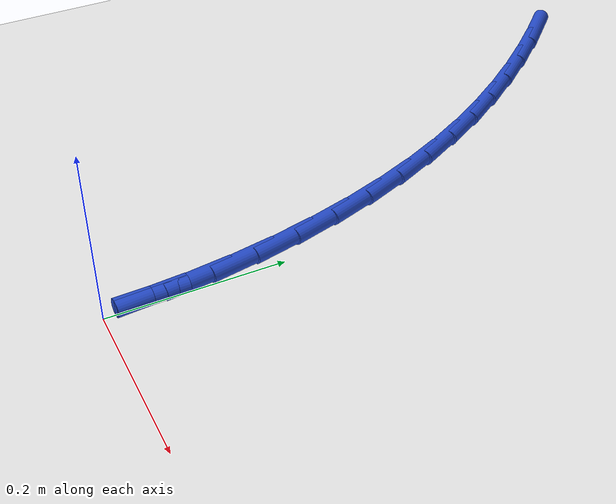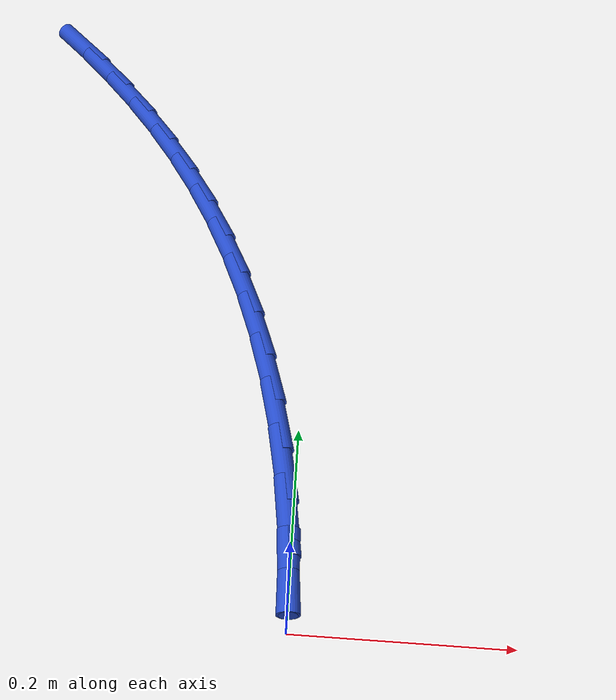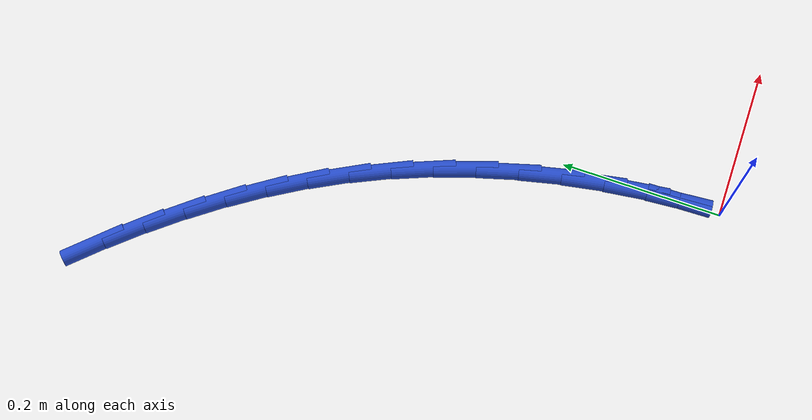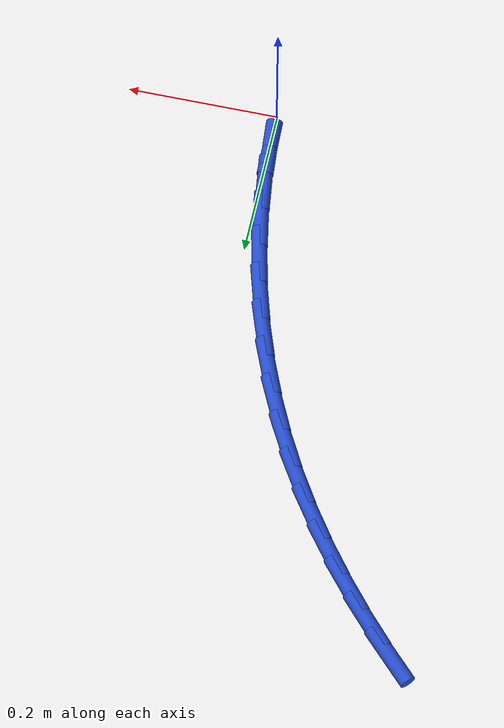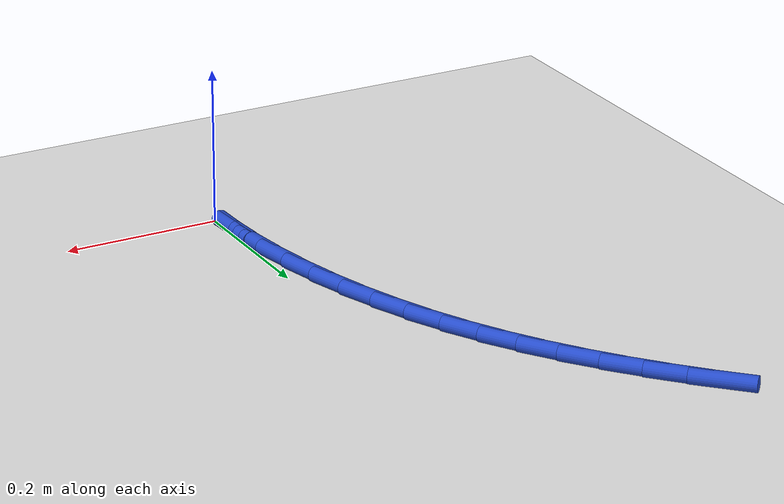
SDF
<sdf version="1.6">
 <world name="default">
  <model name="ground_plane">
   <static>1</static>
   <link name="link">
    <collision name="collision">
     <geometry><plane><normal>0 0 1</normal><size>100 100</size></plane></geometry>
     <surface><friction><ode><mu>100</mu><mu2>50</mu2></ode></friction></surface>
    </collision>
    <visual name="visual">
     <cast_shadows>0</cast_shadows>
     <geometry><plane><normal>0 0 1</normal><size>100 100</size></plane></geometry>
     <material>
      <script><uri>file://media/materials/scripts/gazebo.material</uri><name>Gazebo/WhiteGlow</name></script>
     </material>
    </visual>
   </link>
  </model>
  <model name="line">
   <link name="link_1">
    <pose>-0.0015113442590452824 0.052908897051588376 0.01 0 1.57 -1.4902220996330644</pose>
    <collision name="collision">
     <geometry><cylinder><radius>0.01</radius><length>0.08</length></cylinder></geometry>
    </collision>
    <visual name="visual">
     <material>
      <script><name>Gazebo/Blue</name><uri>file://media/materials/scripts/gazebo.material</uri></script>
     </material>
     <geometry><cylinder><radius>0.01</radius><length>0.08</length></cylinder></geometry>
    </visual>
   </link>
   <link name="link_2">
    <pose>-0.005767511969865522 0.10561747685629636 0.01 0 1.57 -1.438554712863326</pose>
    <collision name="collision">
     <geometry><cylinder><radius>0.01</radius><length>0.08</length></cylinder></geometry>
    </collision>
    <visual name="visual">
     <material>
      <script><name>Gazebo/Blue</name><uri>file://media/materials/scripts/gazebo.material</uri></script>
     </material>
     <geometry><cylinder><radius>0.01</radius><length>0.08</length></cylinder></geometry>
    </visual>
   </link>
   <link name="link_3">
    <pose>-0.01272885363275591 0.1579513409716113 0.01 0 1.57 -1.3869929703655015</pose>
    <collision name="collision">
     <geometry><cylinder><radius>0.01</radius><length>0.08</length></cylinder></geometry>
    </collision>
    <visual name="visual">
     <material>
      <script><name>Gazebo/Blue</name><uri>file://media/materials/scripts/gazebo.material</uri></script>
     </material>
     <geometry><cylinder><radius>0.01</radius><length>0.08</length></cylinder></geometry>
    </visual>
   </link>
   <link name="link_4">
    <pose>-0.022355719748011604 0.20973609095502038 0.01 0 1.57 -1.3352875653628402</pose>
    <collision name="collision">
     <geometry><cylinder><radius>0.01</radius><length>0.08</length></cylinder></geometry>
    </collision>
    <visual name="visual">
     <material>
      <script><name>Gazebo/Blue</name><uri>file://media/materials/scripts/gazebo.material</uri></script>
     </material>
     <geometry><cylinder><radius>0.01</radius><length>0.08</length></cylinder></geometry>
    </visual>
   </link>
   <link name="link_5">
    <pose>-0.0346084608159278 0.26079732836401115 0.01 0 1.57 -1.2831851845826594</pose>
    <collision name="collision">
     <geometry><cylinder><radius>0.01</radius><length>0.08</length></cylinder></geometry>
    </collision>
    <visual name="visual">
     <material>
      <script><name>Gazebo/Blue</name><uri>file://media/materials/scripts/gazebo.material</uri></script>
     </material>
     <geometry><cylinder><radius>0.01</radius><length>0.08</length></cylinder></geometry>
    </visual>
   </link>
   <link name="link_6">
    <pose>-0.04944742733679966 0.31096065475607076 0.01 0 1.57 -1.230429942562389</pose>
    <collision name="collision">
     <geometry><cylinder><radius>0.01</radius><length>0.08</length></cylinder></geometry>
    </collision>
    <visual name="visual">
     <material>
      <script><name>Gazebo/Blue</name><uri>file://media/materials/scripts/gazebo.material</uri></script>
     </material>
     <geometry><cylinder><radius>0.01</radius><length>0.08</length></cylinder></geometry>
    </visual>
   </link>
   <link name="link_7">
    <pose>-0.06683296981092239 0.36005167168868685 0.01 0 1.57 -1.1767651869679265</pose>
    <collision name="collision">
     <geometry><cylinder><radius>0.01</radius><length>0.08</length></cylinder></geometry>
    </collision>
    <visual name="visual">
     <material>
      <script><name>Gazebo/Blue</name><uri>file://media/materials/scripts/gazebo.material</uri></script>
     </material>
     <geometry><cylinder><radius>0.01</radius><length>0.08</length></cylinder></geometry>
    </visual>
   </link>
   <link name="link_8">
    <pose>-0.08672543873859112 0.40789598071934635 0.01 0 1.57 -1.1219360075591933</pose>
    <collision name="collision">
     <geometry><cylinder><radius>0.01</radius><length>0.08</length></cylinder></geometry>
    </collision>
    <visual name="visual">
     <material>
      <script><name>Gazebo/Blue</name><uri>file://media/materials/scripts/gazebo.material</uri></script>
     </material>
     <geometry><cylinder><radius>0.01</radius><length>0.08</length></cylinder></geometry>
    </visual>
   </link>
   <link name="link_9">
    <pose>-0.10908518462010108 0.454319183405537 0.01 0 1.57 -1.066011722869733</pose>
    <collision name="collision">
     <geometry><cylinder><radius>0.01</radius><length>0.08</length></cylinder></geometry>
    </collision>
    <visual name="visual">
     <material>
      <script><name>Gazebo/Blue</name><uri>file://media/materials/scripts/gazebo.material</uri></script>
     </material>
     <geometry><cylinder><radius>0.01</radius><length>0.08</length></cylinder></geometry>
    </visual>
   </link>
   <link name="link_10">
    <pose>-0.13386539940159328 0.49916770442321495 0.01 0 1.57 -1.0115325799989665</pose>
    <collision name="collision">
     <geometry><cylinder><radius>0.01</radius><length>0.08</length></cylinder></geometry>
    </collision>
    <visual name="visual">
     <material>
      <script><name>Gazebo/Blue</name><uri>file://media/materials/scripts/gazebo.material</uri></script>
     </material>
     <geometry><cylinder><radius>0.01</radius><length>0.08</length></cylinder></geometry>
    </visual>
   </link>
   <link name="link_11">
    <pose>-0.16096118623748756 0.5424569396910864 0.01 0 1.57 -0.9600853698183551</pose>
    <collision name="collision">
     <geometry><cylinder><radius>0.01</radius><length>0.08</length></cylinder></geometry>
    </collision>
    <visual name="visual">
     <material>
      <script><name>Gazebo/Blue</name><uri>file://media/materials/scripts/gazebo.material</uri></script>
     </material>
     <geometry><cylinder><radius>0.01</radius><length>0.08</length></cylinder></geometry>
    </visual>
   </link>
   <link name="link_12">
    <pose>-0.19023943677109562 0.5842843480172825 0.01 0 1.57 -0.9119783430722289</pose>
    <collision name="collision">
     <geometry><cylinder><radius>0.01</radius><length>0.08</length></cylinder></geometry>
    </collision>
    <visual name="visual">
     <material>
      <script><name>Gazebo/Blue</name><uri>file://media/materials/scripts/gazebo.material</uri></script>
     </material>
     <geometry><cylinder><radius>0.01</radius><length>0.08</length></cylinder></geometry>
    </visual>
   </link>
   <link name="link_13">
    <pose>-0.2215668556857692 0.6247479320473227 0.01 0 1.57 -0.8674112463206013</pose>
    <collision name="collision">
     <geometry><cylinder><radius>0.01</radius><length>0.08</length></cylinder></geometry>
    </collision>
    <visual name="visual">
     <material>
      <script><name>Gazebo/Blue</name><uri>file://media/materials/scripts/gazebo.material</uri></script>
     </material>
     <geometry><cylinder><radius>0.01</radius><length>0.08</length></cylinder></geometry>
    </visual>
   </link>
   <link name="link_14">
    <pose>-0.25481014766485993 0.6639456944267257 0.01 0 1.57 -0.8264952652474998</pose>
    <collision name="collision">
     <geometry><cylinder><radius>0.01</radius><length>0.08</length></cylinder></geometry>
    </collision>
    <visual name="visual">
     <material>
      <script><name>Gazebo/Blue</name><uri>file://media/materials/scripts/gazebo.material</uri></script>
     </material>
     <geometry><cylinder><radius>0.01</radius><length>0.08</length></cylinder></geometry>
    </visual>
   </link>
   <link name="link_15">
    <pose>-0.2898360173917197 0.7019756378010111 0.01 0 1.57 -0.7892682299902306</pose>
    <collision name="collision">
     <geometry><cylinder><radius>0.01</radius><length>0.08</length></cylinder></geometry>
    </collision>
    <visual name="visual">
     <material>
      <script><name>Gazebo/Blue</name><uri>file://media/materials/scripts/gazebo.material</uri></script>
     </material>
     <geometry><cylinder><radius>0.01</radius><length>0.08</length></cylinder></geometry>
    </visual>
   </link>
   <link name="link_131">
    <pose>-0.0015216086697290993 0.05290608858429496 0.01 0 1.57 -1.5420436940517</pose>
    <collision name="collision">
     <geometry><cylinder><radius>0.01</radius><length>0.08</length></cylinder></geometry>
    </collision>
    <visual name="visual">
     <material>
      <script><name>Gazebo/Blue</name><uri>file://media/materials/scripts/gazebo.material</uri></script>
     </material>
     <geometry><cylinder><radius>0.01</radius><length>0.08</length></cylinder></geometry>
    </visual>
   </link>
  </model>
 </world>
</sdf>
